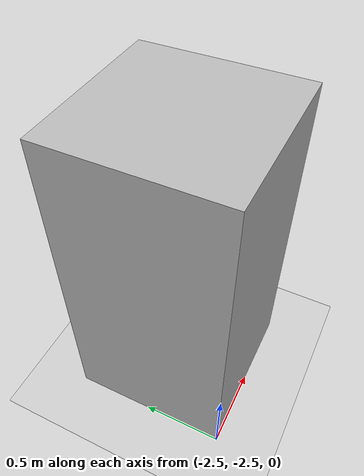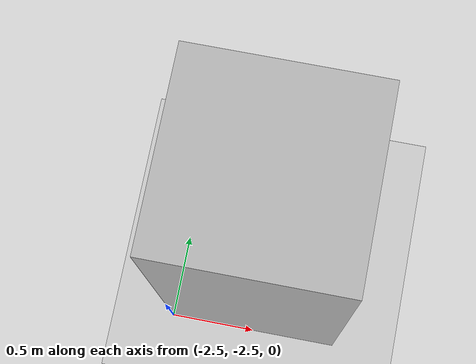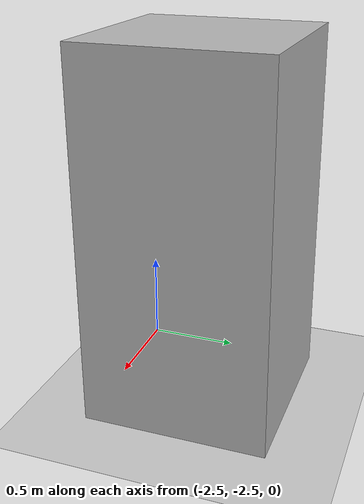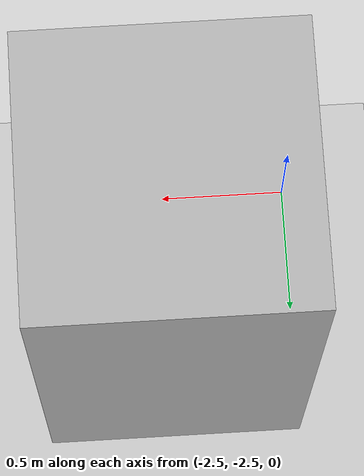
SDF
<sdf version="1.5">
 <world name="default">
  <model name="ground_plane">
   <static>1</static>
   <link name="link">
    <collision name="collision">
     <geometry><plane><normal>0 0 1</normal><size>100 100</size></plane></geometry>
     <surface><friction><ode><mu>100</mu><mu2>50</mu2></ode></friction></surface>
    </collision>
    <visual name="visual">
     <cast_shadows>0</cast_shadows>
     <geometry><plane><normal>0 0 1</normal><size>100 100</size></plane></geometry>
     <material>
      <script><uri>file://media/materials/scripts/gazebo.material</uri><name>Gazebo/Grey</name></script>
     </material>
    </visual>
   </link>
  </model>
  <light name="sun" type="directional">
   <pose>0 0 10 0 -0 0</pose>
   <diffuse>0.8 0.8 0.8 1</diffuse>
   <specular>0.2 0.2 0.2 1</specular>
   <attenuation>
    <range>1000</range>
    <constant>0.9</constant>
    <linear>0.01</linear>
    <quadratic>0.001</quadratic>
   </attenuation>
   <direction>-0.5 0.1 -0.9</direction>
  </light>
  <model name="box">
   <pose>-2 -2 1 0 -0 0</pose>
   <link name="link">
    <collision name="collision"><geometry><box><size>1 1 2</size></box></geometry></collision>
    <visual name="visual">
     <plugin name="client1" filename="build/libClient1.so"/>
     <geometry><box><size>1 1 2</size></box></geometry>
    </visual>
    <inertial>
     <inertia><ixx>1</ixx><ixy>0</ixy><ixz>0</ixz><iyy>1</iyy><iyz>0</iyz><izz>1</izz></inertia>
     <mass>1</mass>
    </inertial>
   </link>
  </model>
  <physics name="default_physics" default="0" type="ode">
   <max_step_size>0.001</max_step_size>
   <real_time_factor>1</real_time_factor>
   <real_time_update_rate>1000</real_time_update_rate>
   <gravity>0 0 -9.8</gravity>
   <magnetic_field>6e-06 2.3e-05 -4.2e-05</magnetic_field>
  </physics>
  <scene><ambient>0.4 0.4 0.4 1</ambient><background>0.7 0.7 0.7 1</background><shadows>1</shadows></scene>
  <spherical_coordinates>
   <surface_model>EARTH_WGS84</surface_model>
   <latitude_deg>0</latitude_deg>
   <longitude_deg>0</longitude_deg>
   <elevation>0</elevation>
   <heading_deg>0</heading_deg>
  </spherical_coordinates>
 </world>
</sdf>
